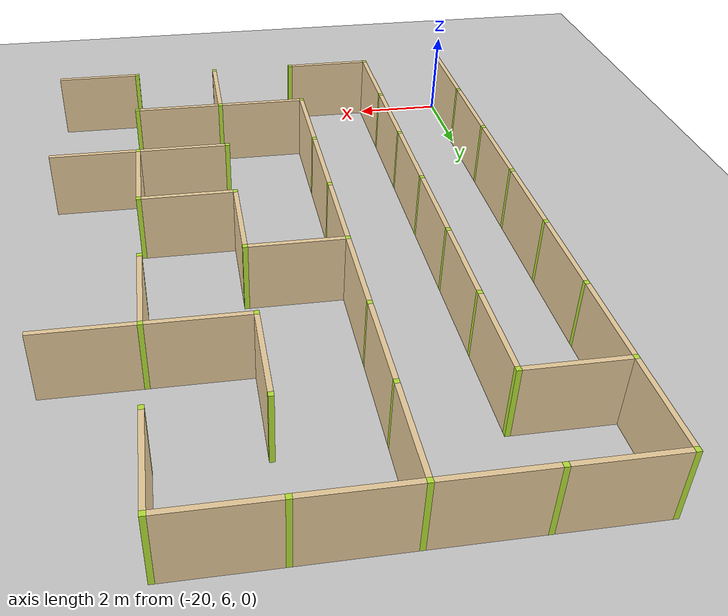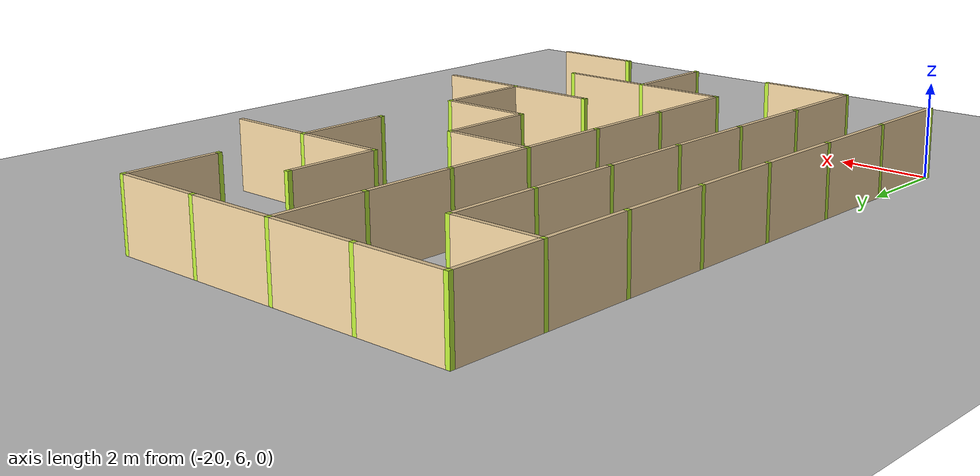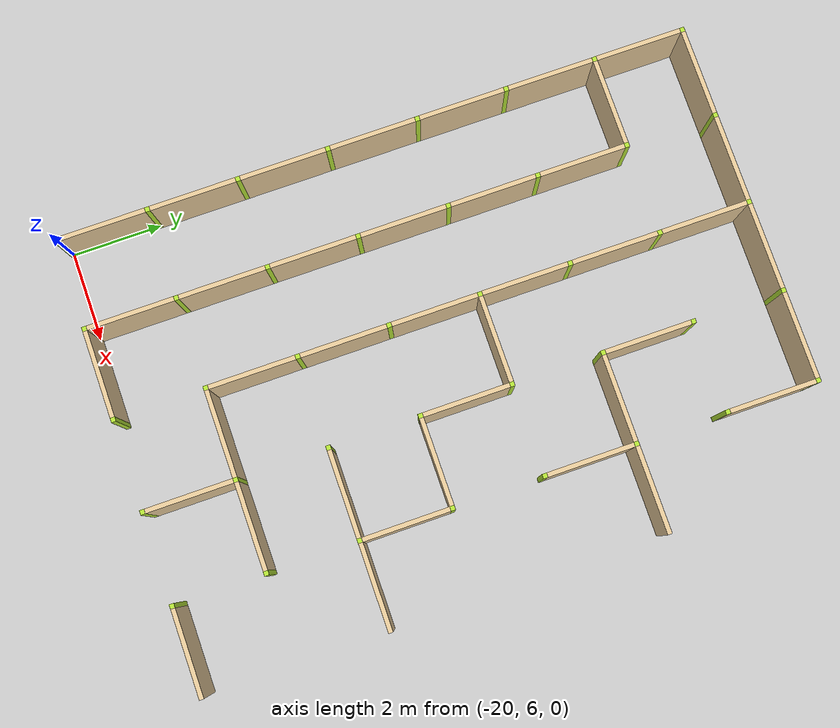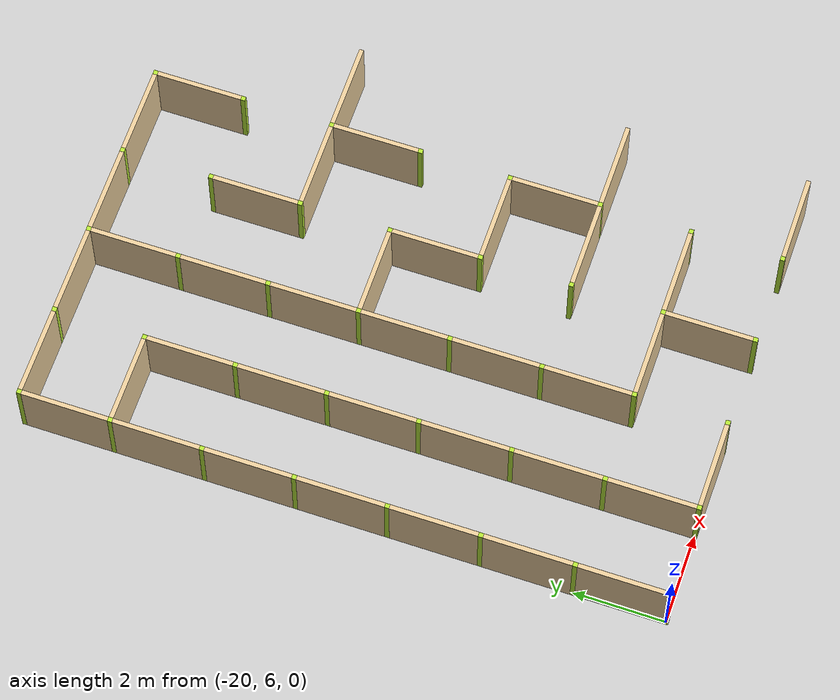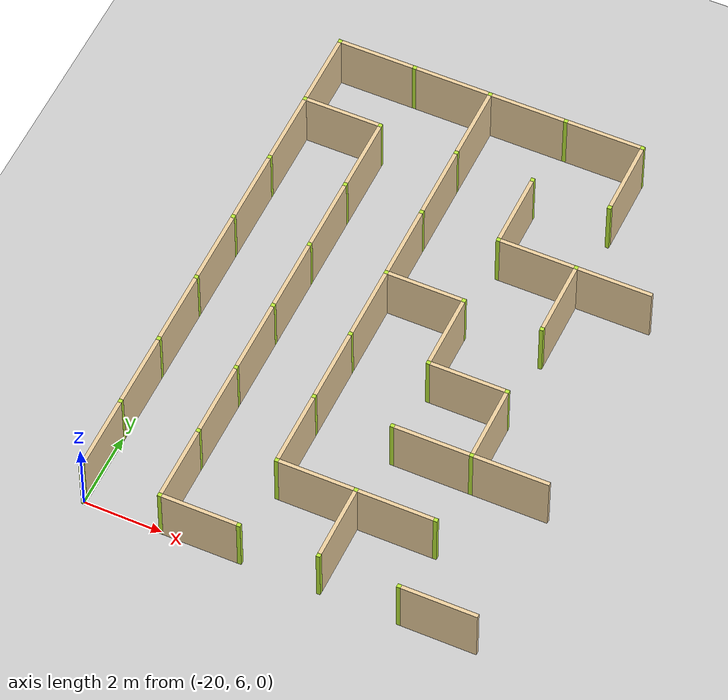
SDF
<sdf version="1.4">
 <world name="maze_world">
  <model name="ground">
   <static>true</static>
   <link name="ground_link">
    <collision name="collision1"><geometry><plane><normal>0 0 1</normal></plane></geometry></collision>
    <visual name="visual1"><geometry><plane><normal>0 0 1</normal><size>100 100</size></plane></geometry></visual>
   </link>
  </model>
  <model name="Untitled">
   <link name="Wall_0_0_h">
    <collision name="Wall_0_Collision">
     <geometry><box><size>1.9 0.1 1.5</size></box></geometry>
     <pose>0 0 0.75 0 -0 0</pose>
    </collision>
    <visual name="Wall_0_Visual">
     <pose>0 0 0.75 0 -0 0</pose>
     <geometry><box><size>1.9 0.1 1.5</size></box></geometry>
     <material>
      <script><uri>file://media/materials/scripts/gazebo.material</uri><name>Gazebo/Grey</name></script>
      <ambient>0.921569 0.807843 0.615686 1</ambient>
     </material>
     <meta><layer>0</layer></meta>
    </visual>
    <pose>-19.0 20 0 0 -0 0</pose>
   </link>
   <link name="Wall_0_0_v">
    <collision name="Wall_0_Collision">
     <geometry><box><size>1.9 0.1 1.5</size></box></geometry>
     <pose>0 0 0.75 0 -0 0</pose>
    </collision>
    <visual name="Wall_0_Visual">
     <pose>0 0 0.75 0 -0 0</pose>
     <geometry><box><size>1.9 0.1 1.5</size></box></geometry>
     <material>
      <script><uri>file://media/materials/scripts/gazebo.material</uri><name>Gazebo/Grey</name></script>
      <ambient>0.921569 0.807843 0.615686 1</ambient>
     </material>
     <meta><layer>0</layer></meta>
    </visual>
    <pose>-20 19.0 0 0 -0 1.5708</pose>
   </link>
   <link name="Joint_-20_20">
    <collision name="Wall_2_Collision">
     <geometry><box><size>0.1 0.1 1.5</size></box></geometry>
     <pose>0 0 0.75 0 -0 0</pose>
    </collision>
    <visual name="Wall_2_Visual">
     <pose>0 0 0.75 0 -0 0</pose>
     <geometry><box><size>0.1 0.1 1.5</size></box></geometry>
     <material>
      <script><uri>file://media/materials/scripts/gazebo.material</uri><name>Gazebo/Grey</name></script>
      <ambient>0.721569 0.907843 0.215686 1</ambient>
     </material>
     <meta><layer>0</layer></meta>
    </visual>
    <pose>-20 20 0 0 -0 0</pose>
   </link>
   <link name="Wall_1_0_h">
    <collision name="Wall_0_Collision">
     <geometry><box><size>1.9 0.1 1.5</size></box></geometry>
     <pose>0 0 0.75 0 -0 0</pose>
    </collision>
    <visual name="Wall_0_Visual">
     <pose>0 0 0.75 0 -0 0</pose>
     <geometry><box><size>1.9 0.1 1.5</size></box></geometry>
     <material>
      <script><uri>file://media/materials/scripts/gazebo.material</uri><name>Gazebo/Grey</name></script>
      <ambient>0.921569 0.807843 0.615686 1</ambient>
     </material>
     <meta><layer>0</layer></meta>
    </visual>
    <pose>-17.0 20 0 0 -0 0</pose>
   </link>
   <link name="Joint_-18_20">
    <collision name="Wall_2_Collision">
     <geometry><box><size>0.1 0.1 1.5</size></box></geometry>
     <pose>0 0 0.75 0 -0 0</pose>
    </collision>
    <visual name="Wall_2_Visual">
     <pose>0 0 0.75 0 -0 0</pose>
     <geometry><box><size>0.1 0.1 1.5</size></box></geometry>
     <material>
      <script><uri>file://media/materials/scripts/gazebo.material</uri><name>Gazebo/Grey</name></script>
      <ambient>0.721569 0.907843 0.215686 1</ambient>
     </material>
     <meta><layer>0</layer></meta>
    </visual>
    <pose>-18 20 0 0 -0 0</pose>
   </link>
   <link name="Wall_2_0_h">
    <collision name="Wall_0_Collision">
     <geometry><box><size>1.9 0.1 1.5</size></box></geometry>
     <pose>0 0 0.75 0 -0 0</pose>
    </collision>
    <visual name="Wall_0_Visual">
     <pose>0 0 0.75 0 -0 0</pose>
     <geometry><box><size>1.9 0.1 1.5</size></box></geometry>
     <material>
      <script><uri>file://media/materials/scripts/gazebo.material</uri><name>Gazebo/Grey</name></script>
      <ambient>0.921569 0.807843 0.615686 1</ambient>
     </material>
     <meta><layer>0</layer></meta>
    </visual>
    <pose>-15.0 20 0 0 -0 0</pose>
   </link>
   <link name="Wall_2_0_v">
    <collision name="Wall_0_Collision">
     <geometry><box><size>1.9 0.1 1.5</size></box></geometry>
     <pose>0 0 0.75 0 -0 0</pose>
    </collision>
    <visual name="Wall_0_Visual">
     <pose>0 0 0.75 0 -0 0</pose>
     <geometry><box><size>1.9 0.1 1.5</size></box></geometry>
     <material>
      <script><uri>file://media/materials/scripts/gazebo.material</uri><name>Gazebo/Grey</name></script>
      <ambient>0.921569 0.807843 0.615686 1</ambient>
     </material>
     <meta><layer>0</layer></meta>
    </visual>
    <pose>-16 19.0 0 0 -0 1.5708</pose>
   </link>
   <link name="Joint_-16_20">
    <collision name="Wall_2_Collision">
     <geometry><box><size>0.1 0.1 1.5</size></box></geometry>
     <pose>0 0 0.75 0 -0 0</pose>
    </collision>
    <visual name="Wall_2_Visual">
     <pose>0 0 0.75 0 -0 0</pose>
     <geometry><box><size>0.1 0.1 1.5</size></box></geometry>
     <material>
      <script><uri>file://media/materials/scripts/gazebo.material</uri><name>Gazebo/Grey</name></script>
      <ambient>0.721569 0.907843 0.215686 1</ambient>
     </material>
     <meta><layer>0</layer></meta>
    </visual>
    <pose>-16 20 0 0 -0 0</pose>
   </link>
   <link name="Wall_3_0_h">
    <collision name="Wall_0_Collision">
     <geometry><box><size>1.9 0.1 1.5</size></box></geometry>
     <pose>0 0 0.75 0 -0 0</pose>
    </collision>
    <visual name="Wall_0_Visual">
     <pose>0 0 0.75 0 -0 0</pose>
     <geometry><box><size>1.9 0.1 1.5</size></box></geometry>
     <material>
      <script><uri>file://media/materials/scripts/gazebo.material</uri><name>Gazebo/Grey</name></script>
      <ambient>0.921569 0.807843 0.615686 1</ambient>
     </material>
     <meta><layer>0</layer></meta>
    </visual>
    <pose>-13.0 20 0 0 -0 0</pose>
   </link>
   <link name="Joint_-14_20">
    <collision name="Wall_2_Collision">
     <geometry><box><size>0.1 0.1 1.5</size></box></geometry>
     <pose>0 0 0.75 0 -0 0</pose>
    </collision>
    <visual name="Wall_2_Visual">
     <pose>0 0 0.75 0 -0 0</pose>
     <geometry><box><size>0.1 0.1 1.5</size></box></geometry>
     <material>
      <script><uri>file://media/materials/scripts/gazebo.material</uri><name>Gazebo/Grey</name></script>
      <ambient>0.721569 0.907843 0.215686 1</ambient>
     </material>
     <meta><layer>0</layer></meta>
    </visual>
    <pose>-14 20 0 0 -0 0</pose>
   </link>
   <link name="Wall_4_0_v">
    <collision name="Wall_0_Collision">
     <geometry><box><size>1.9 0.1 1.5</size></box></geometry>
     <pose>0 0 0.75 0 -0 0</pose>
    </collision>
    <visual name="Wall_0_Visual">
     <pose>0 0 0.75 0 -0 0</pose>
     <geometry><box><size>1.9 0.1 1.5</size></box></geometry>
     <material>
      <script><uri>file://media/materials/scripts/gazebo.material</uri><name>Gazebo/Grey</name></script>
      <ambient>0.921569 0.807843 0.615686 1</ambient>
     </material>
     <meta><layer>0</layer></meta>
    </visual>
    <pose>-12 19.0 0 0 -0 1.5708</pose>
   </link>
   <link name="Joint_-12_20">
    <collision name="Wall_2_Collision">
     <geometry><box><size>0.1 0.1 1.5</size></box></geometry>
     <pose>0 0 0.75 0 -0 0</pose>
    </collision>
    <visual name="Wall_2_Visual">
     <pose>0 0 0.75 0 -0 0</pose>
     <geometry><box><size>0.1 0.1 1.5</size></box></geometry>
     <material>
      <script><uri>file://media/materials/scripts/gazebo.material</uri><name>Gazebo/Grey</name></script>
      <ambient>0.721569 0.907843 0.215686 1</ambient>
     </material>
     <meta><layer>0</layer></meta>
    </visual>
    <pose>-12 20 0 0 -0 0</pose>
   </link>
   <link name="Wall_0_1_h">
    <collision name="Wall_0_Collision">
     <geometry><box><size>1.9 0.1 1.5</size></box></geometry>
     <pose>0 0 0.75 0 -0 0</pose>
    </collision>
    <visual name="Wall_0_Visual">
     <pose>0 0 0.75 0 -0 0</pose>
     <geometry><box><size>1.9 0.1 1.5</size></box></geometry>
     <material>
      <script><uri>file://media/materials/scripts/gazebo.material</uri><name>Gazebo/Grey</name></script>
      <ambient>0.921569 0.807843 0.615686 1</ambient>
     </material>
     <meta><layer>0</layer></meta>
    </visual>
    <pose>-19.0 18 0 0 -0 0</pose>
   </link>
   <link name="Wall_0_1_v">
    <collision name="Wall_0_Collision">
     <geometry><box><size>1.9 0.1 1.5</size></box></geometry>
     <pose>0 0 0.75 0 -0 0</pose>
    </collision>
    <visual name="Wall_0_Visual">
     <pose>0 0 0.75 0 -0 0</pose>
     <geometry><box><size>1.9 0.1 1.5</size></box></geometry>
     <material>
      <script><uri>file://media/materials/scripts/gazebo.material</uri><name>Gazebo/Grey</name></script>
      <ambient>0.921569 0.807843 0.615686 1</ambient>
     </material>
     <meta><layer>0</layer></meta>
    </visual>
    <pose>-20 17.0 0 0 -0 1.5708</pose>
   </link>
   <link name="Joint_-20_18">
    <collision name="Wall_2_Collision">
     <geometry><box><size>0.1 0.1 1.5</size></box></geometry>
     <pose>0 0 0.75 0 -0 0</pose>
    </collision>
    <visual name="Wall_2_Visual">
     <pose>0 0 0.75 0 -0 0</pose>
     <geometry><box><size>0.1 0.1 1.5</size></box></geometry>
     <material>
      <script><uri>file://media/materials/scripts/gazebo.material</uri><name>Gazebo/Grey</name></script>
      <ambient>0.721569 0.907843 0.215686 1</ambient>
     </material>
     <meta><layer>0</layer></meta>
    </visual>
    <pose>-20 18 0 0 -0 0</pose>
   </link>
   <link name="Wall_1_1_v">
    <collision name="Wall_0_Collision">
     <geometry><box><size>1.9 0.1 1.5</size></box></geometry>
     <pose>0 0 0.75 0 -0 0</pose>
    </collision>
    <visual name="Wall_0_Visual">
     <pose>0 0 0.75 0 -0 0</pose>
     <geometry><box><size>1.9 0.1 1.5</size></box></geometry>
     <material>
      <script><uri>file://media/materials/scripts/gazebo.material</uri><name>Gazebo/Grey</name></script>
      <ambient>0.921569 0.807843 0.615686 1</ambient>
     </material>
     <meta><layer>0</layer></meta>
    </visual>
    <pose>-18 17.0 0 0 -0 1.5708</pose>
   </link>
   <link name="Joint_-18_18">
    <collision name="Wall_2_Collision">
     <geometry><box><size>0.1 0.1 1.5</size></box></geometry>
     <pose>0 0 0.75 0 -0 0</pose>
    </collision>
    <visual name="Wall_2_Visual">
     <pose>0 0 0.75 0 -0 0</pose>
     <geometry><box><size>0.1 0.1 1.5</size></box></geometry>
     <material>
      <script><uri>file://media/materials/scripts/gazebo.material</uri><name>Gazebo/Grey</name></script>
      <ambient>0.721569 0.907843 0.215686 1</ambient>
     </material>
     <meta><layer>0</layer></meta>
    </visual>
    <pose>-18 18 0 0 -0 0</pose>
   </link>
   <link name="Wall_2_1_v">
    <collision name="Wall_0_Collision">
     <geometry><box><size>1.9 0.1 1.5</size></box></geometry>
     <pose>0 0 0.75 0 -0 0</pose>
    </collision>
    <visual name="Wall_0_Visual">
     <pose>0 0 0.75 0 -0 0</pose>
     <geometry><box><size>1.9 0.1 1.5</size></box></geometry>
     <material>
      <script><uri>file://media/materials/scripts/gazebo.material</uri><name>Gazebo/Grey</name></script>
      <ambient>0.921569 0.807843 0.615686 1</ambient>
     </material>
     <meta><layer>0</layer></meta>
    </visual>
    <pose>-16 17.0 0 0 -0 1.5708</pose>
   </link>
   <link name="Joint_-16_18">
    <collision name="Wall_2_Collision">
     <geometry><box><size>0.1 0.1 1.5</size></box></geometry>
     <pose>0 0 0.75 0 -0 0</pose>
    </collision>
    <visual name="Wall_2_Visual">
     <pose>0 0 0.75 0 -0 0</pose>
     <geometry><box><size>0.1 0.1 1.5</size></box></geometry>
     <material>
      <script><uri>file://media/materials/scripts/gazebo.material</uri><name>Gazebo/Grey</name></script>
      <ambient>0.721569 0.907843 0.215686 1</ambient>
     </material>
     <meta><layer>0</layer></meta>
    </visual>
    <pose>-16 18 0 0 -0 0</pose>
   </link>
   <link name="Wall_3_1_v">
    <collision name="Wall_0_Collision">
     <geometry><box><size>1.9 0.1 1.5</size></box></geometry>
     <pose>0 0 0.75 0 -0 0</pose>
    </collision>
    <visual name="Wall_0_Visual">
     <pose>0 0 0.75 0 -0 0</pose>
     <geometry><box><size>1.9 0.1 1.5</size></box></geometry>
     <material>
      <script><uri>file://media/materials/scripts/gazebo.material</uri><name>Gazebo/Grey</name></script>
      <ambient>0.921569 0.807843 0.615686 1</ambient>
     </material>
     <meta><layer>0</layer></meta>
    </visual>
    <pose>-14 17.0 0 0 -0 1.5708</pose>
   </link>
   <link name="Joint_-14_18">
    <collision name="Wall_2_Collision">
     <geometry><box><size>0.1 0.1 1.5</size></box></geometry>
     <pose>0 0 0.75 0 -0 0</pose>
    </collision>
    <visual name="Wall_2_Visual">
     <pose>0 0 0.75 0 -0 0</pose>
     <geometry><box><size>0.1 0.1 1.5</size></box></geometry>
     <material>
      <script><uri>file://media/materials/scripts/gazebo.material</uri><name>Gazebo/Grey</name></script>
      <ambient>0.721569 0.907843 0.215686 1</ambient>
     </material>
     <meta><layer>0</layer></meta>
    </visual>
    <pose>-14 18 0 0 -0 0</pose>
   </link>
   <link name="Joint_-12_18">
    <collision name="Wall_2_Collision">
     <geometry><box><size>0.1 0.1 1.5</size></box></geometry>
     <pose>0 0 0.75 0 -0 0</pose>
    </collision>
    <visual name="Wall_2_Visual">
     <pose>0 0 0.75 0 -0 0</pose>
     <geometry><box><size>0.1 0.1 1.5</size></box></geometry>
     <material>
      <script><uri>file://media/materials/scripts/gazebo.material</uri><name>Gazebo/Grey</name></script>
      <ambient>0.721569 0.907843 0.215686 1</ambient>
     </material>
     <meta><layer>0</layer></meta>
    </visual>
    <pose>-12 18 0 0 -0 0</pose>
   </link>
   <link name="Wall_0_2_v">
    <collision name="Wall_0_Collision">
     <geometry><box><size>1.9 0.1 1.5</size></box></geometry>
     <pose>0 0 0.75 0 -0 0</pose>
    </collision>
    <visual name="Wall_0_Visual">
     <pose>0 0 0.75 0 -0 0</pose>
     <geometry><box><size>1.9 0.1 1.5</size></box></geometry>
     <material>
      <script><uri>file://media/materials/scripts/gazebo.material</uri><name>Gazebo/Grey</name></script>
      <ambient>0.921569 0.807843 0.615686 1</ambient>
     </material>
     <meta><layer>0</layer></meta>
    </visual>
    <pose>-20 15.0 0 0 -0 1.5708</pose>
   </link>
   <link name="Joint_-20_16">
    <collision name="Wall_2_Collision">
     <geometry><box><size>0.1 0.1 1.5</size></box></geometry>
     <pose>0 0 0.75 0 -0 0</pose>
    </collision>
    <visual name="Wall_2_Visual">
     <pose>0 0 0.75 0 -0 0</pose>
     <geometry><box><size>0.1 0.1 1.5</size></box></geometry>
     <material>
      <script><uri>file://media/materials/scripts/gazebo.material</uri><name>Gazebo/Grey</name></script>
      <ambient>0.721569 0.907843 0.215686 1</ambient>
     </material>
     <meta><layer>0</layer></meta>
    </visual>
    <pose>-20 16 0 0 -0 0</pose>
   </link>
   <link name="Wall_1_2_v">
    <collision name="Wall_0_Collision">
     <geometry><box><size>1.9 0.1 1.5</size></box></geometry>
     <pose>0 0 0.75 0 -0 0</pose>
    </collision>
    <visual name="Wall_0_Visual">
     <pose>0 0 0.75 0 -0 0</pose>
     <geometry><box><size>1.9 0.1 1.5</size></box></geometry>
     <material>
      <script><uri>file://media/materials/scripts/gazebo.material</uri><name>Gazebo/Grey</name></script>
      <ambient>0.921569 0.807843 0.615686 1</ambient>
     </material>
     <meta><layer>0</layer></meta>
    </visual>
    <pose>-18 15.0 0 0 -0 1.5708</pose>
   </link>
   <link name="Joint_-18_16">
    <collision name="Wall_2_Collision">
     <geometry><box><size>0.1 0.1 1.5</size></box></geometry>
     <pose>0 0 0.75 0 -0 0</pose>
    </collision>
    <visual name="Wall_2_Visual">
     <pose>0 0 0.75 0 -0 0</pose>
     <geometry><box><size>0.1 0.1 1.5</size></box></geometry>
     <material>
      <script><uri>file://media/materials/scripts/gazebo.material</uri><name>Gazebo/Grey</name></script>
      <ambient>0.721569 0.907843 0.215686 1</ambient>
     </material>
     <meta><layer>0</layer></meta>
    </visual>
    <pose>-18 16 0 0 -0 0</pose>
   </link>
   <link name="Wall_2_2_v">
    <collision name="Wall_0_Collision">
     <geometry><box><size>1.9 0.1 1.5</size></box></geometry>
     <pose>0 0 0.75 0 -0 0</pose>
    </collision>
    <visual name="Wall_0_Visual">
     <pose>0 0 0.75 0 -0 0</pose>
     <geometry><box><size>1.9 0.1 1.5</size></box></geometry>
     <material>
      <script><uri>file://media/materials/scripts/gazebo.material</uri><name>Gazebo/Grey</name></script>
      <ambient>0.921569 0.807843 0.615686 1</ambient>
     </material>
     <meta><layer>0</layer></meta>
    </visual>
    <pose>-16 15.0 0 0 -0 1.5708</pose>
   </link>
   <link name="Joint_-16_16">
    <collision name="Wall_2_Collision">
     <geometry><box><size>0.1 0.1 1.5</size></box></geometry>
     <pose>0 0 0.75 0 -0 0</pose>
    </collision>
    <visual name="Wall_2_Visual">
     <pose>0 0 0.75 0 -0 0</pose>
     <geometry><box><size>0.1 0.1 1.5</size></box></geometry>
     <material>
      <script><uri>file://media/materials/scripts/gazebo.material</uri><name>Gazebo/Grey</name></script>
      <ambient>0.721569 0.907843 0.215686 1</ambient>
     </material>
     <meta><layer>0</layer></meta>
    </visual>
    <pose>-16 16 0 0 -0 0</pose>
   </link>
   <link name="Wall_3_2_h">
    <collision name="Wall_0_Collision">
     <geometry><box><size>1.9 0.1 1.5</size></box></geometry>
     <pose>0 0 0.75 0 -0 0</pose>
    </collision>
    <visual name="Wall_0_Visual">
     <pose>0 0 0.75 0 -0 0</pose>
     <geometry><box><size>1.9 0.1 1.5</size></box></geometry>
     <material>
      <script><uri>file://media/materials/scripts/gazebo.material</uri><name>Gazebo/Grey</name></script>
      <ambient>0.921569 0.807843 0.615686 1</ambient>
     </material>
     <meta><layer>0</layer></meta>
    </visual>
    <pose>-13.0 16 0 0 -0 0</pose>
   </link>
   <link name="Joint_-14_16">
    <collision name="Wall_2_Collision">
     <geometry><box><size>0.1 0.1 1.5</size></box></geometry>
     <pose>0 0 0.75 0 -0 0</pose>
    </collision>
    <visual name="Wall_2_Visual">
     <pose>0 0 0.75 0 -0 0</pose>
     <geometry><box><size>0.1 0.1 1.5</size></box></geometry>
     <material>
      <script><uri>file://media/materials/scripts/gazebo.material</uri><name>Gazebo/Grey</name></script>
      <ambient>0.721569 0.907843 0.215686 1</ambient>
     </material>
     <meta><layer>0</layer></meta>
    </visual>
    <pose>-14 16 0 0 -0 0</pose>
   </link>
   <link name="Wall_4_2_h">
    <collision name="Wall_0_Collision">
     <geometry><box><size>1.9 0.1 1.5</size></box></geometry>
     <pose>0 0 0.75 0 -0 0</pose>
    </collision>
    <visual name="Wall_0_Visual">
     <pose>0 0 0.75 0 -0 0</pose>
     <geometry><box><size>1.9 0.1 1.5</size></box></geometry>
     <material>
      <script><uri>file://media/materials/scripts/gazebo.material</uri><name>Gazebo/Grey</name></script>
      <ambient>0.921569 0.807843 0.615686 1</ambient>
     </material>
     <meta><layer>0</layer></meta>
    </visual>
    <pose>-11.0 16 0 0 -0 0</pose>
   </link>
   <link name="Wall_4_2_v">
    <collision name="Wall_0_Collision">
     <geometry><box><size>1.9 0.1 1.5</size></box></geometry>
     <pose>0 0 0.75 0 -0 0</pose>
    </collision>
    <visual name="Wall_0_Visual">
     <pose>0 0 0.75 0 -0 0</pose>
     <geometry><box><size>1.9 0.1 1.5</size></box></geometry>
     <material>
      <script><uri>file://media/materials/scripts/gazebo.material</uri><name>Gazebo/Grey</name></script>
      <ambient>0.921569 0.807843 0.615686 1</ambient>
     </material>
     <meta><layer>0</layer></meta>
    </visual>
    <pose>-12 15.0 0 0 -0 1.5708</pose>
   </link>
   <link name="Joint_-12_16">
    <collision name="Wall_2_Collision">
     <geometry><box><size>0.1 0.1 1.5</size></box></geometry>
     <pose>0 0 0.75 0 -0 0</pose>
    </collision>
    <visual name="Wall_2_Visual">
     <pose>0 0 0.75 0 -0 0</pose>
     <geometry><box><size>0.1 0.1 1.5</size></box></geometry>
     <material>
      <script><uri>file://media/materials/scripts/gazebo.material</uri><name>Gazebo/Grey</name></script>
      <ambient>0.721569 0.907843 0.215686 1</ambient>
     </material>
     <meta><layer>0</layer></meta>
    </visual>
    <pose>-12 16 0 0 -0 0</pose>
   </link>
   <link name="Wall_0_3_v">
    <collision name="Wall_0_Collision">
     <geometry><box><size>1.9 0.1 1.5</size></box></geometry>
     <pose>0 0 0.75 0 -0 0</pose>
    </collision>
    <visual name="Wall_0_Visual">
     <pose>0 0 0.75 0 -0 0</pose>
     <geometry><box><size>1.9 0.1 1.5</size></box></geometry>
     <material>
      <script><uri>file://media/materials/scripts/gazebo.material</uri><name>Gazebo/Grey</name></script>
      <ambient>0.921569 0.807843 0.615686 1</ambient>
     </material>
     <meta><layer>0</layer></meta>
    </visual>
    <pose>-20 13.0 0 0 -0 1.5708</pose>
   </link>
   <link name="Joint_-20_14">
    <collision name="Wall_2_Collision">
     <geometry><box><size>0.1 0.1 1.5</size></box></geometry>
     <pose>0 0 0.75 0 -0 0</pose>
    </collision>
    <visual name="Wall_2_Visual">
     <pose>0 0 0.75 0 -0 0</pose>
     <geometry><box><size>0.1 0.1 1.5</size></box></geometry>
     <material>
      <script><uri>file://media/materials/scripts/gazebo.material</uri><name>Gazebo/Grey</name></script>
      <ambient>0.721569 0.907843 0.215686 1</ambient>
     </material>
     <meta><layer>0</layer></meta>
    </visual>
    <pose>-20 14 0 0 -0 0</pose>
   </link>
   <link name="Wall_1_3_v">
    <collision name="Wall_0_Collision">
     <geometry><box><size>1.9 0.1 1.5</size></box></geometry>
     <pose>0 0 0.75 0 -0 0</pose>
    </collision>
    <visual name="Wall_0_Visual">
     <pose>0 0 0.75 0 -0 0</pose>
     <geometry><box><size>1.9 0.1 1.5</size></box></geometry>
     <material>
      <script><uri>file://media/materials/scripts/gazebo.material</uri><name>Gazebo/Grey</name></script>
      <ambient>0.921569 0.807843 0.615686 1</ambient>
     </material>
     <meta><layer>0</layer></meta>
    </visual>
    <pose>-18 13.0 0 0 -0 1.5708</pose>
   </link>
   <link name="Joint_-18_14">
    <collision name="Wall_2_Collision">
     <geometry><box><size>0.1 0.1 1.5</size></box></geometry>
     <pose>0 0 0.75 0 -0 0</pose>
    </collision>
    <visual name="Wall_2_Visual">
     <pose>0 0 0.75 0 -0 0</pose>
     <geometry><box><size>0.1 0.1 1.5</size></box></geometry>
     <material>
      <script><uri>file://media/materials/scripts/gazebo.material</uri><name>Gazebo/Grey</name></script>
      <ambient>0.721569 0.907843 0.215686 1</ambient>
     </material>
     <meta><layer>0</layer></meta>
    </visual>
    <pose>-18 14 0 0 -0 0</pose>
   </link>
   <link name="Wall_2_3_h">
    <collision name="Wall_0_Collision">
     <geometry><box><size>1.9 0.1 1.5</size></box></geometry>
     <pose>0 0 0.75 0 -0 0</pose>
    </collision>
    <visual name="Wall_0_Visual">
     <pose>0 0 0.75 0 -0 0</pose>
     <geometry><box><size>1.9 0.1 1.5</size></box></geometry>
     <material>
      <script><uri>file://media/materials/scripts/gazebo.material</uri><name>Gazebo/Grey</name></script>
      <ambient>0.921569 0.807843 0.615686 1</ambient>
     </material>
     <meta><layer>0</layer></meta>
    </visual>
    <pose>-15.0 14 0 0 -0 0</pose>
   </link>
   <link name="Wall_2_3_v">
    <collision name="Wall_0_Collision">
     <geometry><box><size>1.9 0.1 1.5</size></box></geometry>
     <pose>0 0 0.75 0 -0 0</pose>
    </collision>
    <visual name="Wall_0_Visual">
     <pose>0 0 0.75 0 -0 0</pose>
     <geometry><box><size>1.9 0.1 1.5</size></box></geometry>
     <material>
      <script><uri>file://media/materials/scripts/gazebo.material</uri><name>Gazebo/Grey</name></script>
      <ambient>0.921569 0.807843 0.615686 1</ambient>
     </material>
     <meta><layer>0</layer></meta>
    </visual>
    <pose>-16 13.0 0 0 -0 1.5708</pose>
   </link>
   <link name="Joint_-16_14">
    <collision name="Wall_2_Collision">
     <geometry><box><size>0.1 0.1 1.5</size></box></geometry>
     <pose>0 0 0.75 0 -0 0</pose>
    </collision>
    <visual name="Wall_2_Visual">
     <pose>0 0 0.75 0 -0 0</pose>
     <geometry><box><size>0.1 0.1 1.5</size></box></geometry>
     <material>
      <script><uri>file://media/materials/scripts/gazebo.material</uri><name>Gazebo/Grey</name></script>
      <ambient>0.721569 0.907843 0.215686 1</ambient>
     </material>
     <meta><layer>0</layer></meta>
    </visual>
    <pose>-16 14 0 0 -0 0</pose>
   </link>
   <link name="Wall_3_3_v">
    <collision name="Wall_0_Collision">
     <geometry><box><size>1.9 0.1 1.5</size></box></geometry>
     <pose>0 0 0.75 0 -0 0</pose>
    </collision>
    <visual name="Wall_0_Visual">
     <pose>0 0 0.75 0 -0 0</pose>
     <geometry><box><size>1.9 0.1 1.5</size></box></geometry>
     <material>
      <script><uri>file://media/materials/scripts/gazebo.material</uri><name>Gazebo/Grey</name></script>
      <ambient>0.921569 0.807843 0.615686 1</ambient>
     </material>
     <meta><layer>0</layer></meta>
    </visual>
    <pose>-14 13.0 0 0 -0 1.5708</pose>
   </link>
   <link name="Joint_-14_14">
    <collision name="Wall_2_Collision">
     <geometry><box><size>0.1 0.1 1.5</size></box></geometry>
     <pose>0 0 0.75 0 -0 0</pose>
    </collision>
    <visual name="Wall_2_Visual">
     <pose>0 0 0.75 0 -0 0</pose>
     <geometry><box><size>0.1 0.1 1.5</size></box></geometry>
     <material>
      <script><uri>file://media/materials/scripts/gazebo.material</uri><name>Gazebo/Grey</name></script>
      <ambient>0.721569 0.907843 0.215686 1</ambient>
     </material>
     <meta><layer>0</layer></meta>
    </visual>
    <pose>-14 14 0 0 -0 0</pose>
   </link>
   <link name="Joint_-12_14">
    <collision name="Wall_2_Collision">
     <geometry><box><size>0.1 0.1 1.5</size></box></geometry>
     <pose>0 0 0.75 0 -0 0</pose>
    </collision>
    <visual name="Wall_2_Visual">
     <pose>0 0 0.75 0 -0 0</pose>
     <geometry><box><size>0.1 0.1 1.5</size></box></geometry>
     <material>
      <script><uri>file://media/materials/scripts/gazebo.material</uri><name>Gazebo/Grey</name></script>
      <ambient>0.721569 0.907843 0.215686 1</ambient>
     </material>
     <meta><layer>0</layer></meta>
    </visual>
    <pose>-12 14 0 0 -0 0</pose>
   </link>
   <link name="Wall_0_4_v">
    <collision name="Wall_0_Collision">
     <geometry><box><size>1.9 0.1 1.5</size></box></geometry>
     <pose>0 0 0.75 0 -0 0</pose>
    </collision>
    <visual name="Wall_0_Visual">
     <pose>0 0 0.75 0 -0 0</pose>
     <geometry><box><size>1.9 0.1 1.5</size></box></geometry>
     <material>
      <script><uri>file://media/materials/scripts/gazebo.material</uri><name>Gazebo/Grey</name></script>
      <ambient>0.921569 0.807843 0.615686 1</ambient>
     </material>
     <meta><layer>0</layer></meta>
    </visual>
    <pose>-20 11.0 0 0 -0 1.5708</pose>
   </link>
   <link name="Joint_-20_12">
    <collision name="Wall_2_Collision">
     <geometry><box><size>0.1 0.1 1.5</size></box></geometry>
     <pose>0 0 0.75 0 -0 0</pose>
    </collision>
    <visual name="Wall_2_Visual">
     <pose>0 0 0.75 0 -0 0</pose>
     <geometry><box><size>0.1 0.1 1.5</size></box></geometry>
     <material>
      <script><uri>file://media/materials/scripts/gazebo.material</uri><name>Gazebo/Grey</name></script>
      <ambient>0.721569 0.907843 0.215686 1</ambient>
     </material>
     <meta><layer>0</layer></meta>
    </visual>
    <pose>-20 12 0 0 -0 0</pose>
   </link>
   <link name="Wall_1_4_v">
    <collision name="Wall_0_Collision">
     <geometry><box><size>1.9 0.1 1.5</size></box></geometry>
     <pose>0 0 0.75 0 -0 0</pose>
    </collision>
    <visual name="Wall_0_Visual">
     <pose>0 0 0.75 0 -0 0</pose>
     <geometry><box><size>1.9 0.1 1.5</size></box></geometry>
     <material>
      <script><uri>file://media/materials/scripts/gazebo.material</uri><name>Gazebo/Grey</name></script>
      <ambient>0.921569 0.807843 0.615686 1</ambient>
     </material>
     <meta><layer>0</layer></meta>
    </visual>
    <pose>-18 11.0 0 0 -0 1.5708</pose>
   </link>
   <link name="Joint_-18_12">
    <collision name="Wall_2_Collision">
     <geometry><box><size>0.1 0.1 1.5</size></box></geometry>
     <pose>0 0 0.75 0 -0 0</pose>
    </collision>
    <visual name="Wall_2_Visual">
     <pose>0 0 0.75 0 -0 0</pose>
     <geometry><box><size>0.1 0.1 1.5</size></box></geometry>
     <material>
      <script><uri>file://media/materials/scripts/gazebo.material</uri><name>Gazebo/Grey</name></script>
      <ambient>0.721569 0.907843 0.215686 1</ambient>
     </material>
     <meta><layer>0</layer></meta>
    </visual>
    <pose>-18 12 0 0 -0 0</pose>
   </link>
   <link name="Wall_2_4_v">
    <collision name="Wall_0_Collision">
     <geometry><box><size>1.9 0.1 1.5</size></box></geometry>
     <pose>0 0 0.75 0 -0 0</pose>
    </collision>
    <visual name="Wall_0_Visual">
     <pose>0 0 0.75 0 -0 0</pose>
     <geometry><box><size>1.9 0.1 1.5</size></box></geometry>
     <material>
      <script><uri>file://media/materials/scripts/gazebo.material</uri><name>Gazebo/Grey</name></script>
      <ambient>0.921569 0.807843 0.615686 1</ambient>
     </material>
     <meta><layer>0</layer></meta>
    </visual>
    <pose>-16 11.0 0 0 -0 1.5708</pose>
   </link>
   <link name="Joint_-16_12">
    <collision name="Wall_2_Collision">
     <geometry><box><size>0.1 0.1 1.5</size></box></geometry>
     <pose>0 0 0.75 0 -0 0</pose>
    </collision>
    <visual name="Wall_2_Visual">
     <pose>0 0 0.75 0 -0 0</pose>
     <geometry><box><size>0.1 0.1 1.5</size></box></geometry>
     <material>
      <script><uri>file://media/materials/scripts/gazebo.material</uri><name>Gazebo/Grey</name></script>
      <ambient>0.721569 0.907843 0.215686 1</ambient>
     </material>
     <meta><layer>0</layer></meta>
    </visual>
    <pose>-16 12 0 0 -0 0</pose>
   </link>
   <link name="Wall_3_4_h">
    <collision name="Wall_0_Collision">
     <geometry><box><size>1.9 0.1 1.5</size></box></geometry>
     <pose>0 0 0.75 0 -0 0</pose>
    </collision>
    <visual name="Wall_0_Visual">
     <pose>0 0 0.75 0 -0 0</pose>
     <geometry><box><size>1.9 0.1 1.5</size></box></geometry>
     <material>
      <script><uri>file://media/materials/scripts/gazebo.material</uri><name>Gazebo/Grey</name></script>
      <ambient>0.921569 0.807843 0.615686 1</ambient>
     </material>
     <meta><layer>0</layer></meta>
    </visual>
    <pose>-13.0 12 0 0 -0 0</pose>
   </link>
   <link name="Joint_-14_12">
    <collision name="Wall_2_Collision">
     <geometry><box><size>0.1 0.1 1.5</size></box></geometry>
     <pose>0 0 0.75 0 -0 0</pose>
    </collision>
    <visual name="Wall_2_Visual">
     <pose>0 0 0.75 0 -0 0</pose>
     <geometry><box><size>0.1 0.1 1.5</size></box></geometry>
     <material>
      <script><uri>file://media/materials/scripts/gazebo.material</uri><name>Gazebo/Grey</name></script>
      <ambient>0.721569 0.907843 0.215686 1</ambient>
     </material>
     <meta><layer>0</layer></meta>
    </visual>
    <pose>-14 12 0 0 -0 0</pose>
   </link>
   <link name="Wall_4_4_v">
    <collision name="Wall_0_Collision">
     <geometry><box><size>1.9 0.1 1.5</size></box></geometry>
     <pose>0 0 0.75 0 -0 0</pose>
    </collision>
    <visual name="Wall_0_Visual">
     <pose>0 0 0.75 0 -0 0</pose>
     <geometry><box><size>1.9 0.1 1.5</size></box></geometry>
     <material>
      <script><uri>file://media/materials/scripts/gazebo.material</uri><name>Gazebo/Grey</name></script>
      <ambient>0.921569 0.807843 0.615686 1</ambient>
     </material>
     <meta><layer>0</layer></meta>
    </visual>
    <pose>-12 11.0 0 0 -0 1.5708</pose>
   </link>
   <link name="Joint_-12_12">
    <collision name="Wall_2_Collision">
     <geometry><box><size>0.1 0.1 1.5</size></box></geometry>
     <pose>0 0 0.75 0 -0 0</pose>
    </collision>
    <visual name="Wall_2_Visual">
     <pose>0 0 0.75 0 -0 0</pose>
     <geometry><box><size>0.1 0.1 1.5</size></box></geometry>
     <material>
      <script><uri>file://media/materials/scripts/gazebo.material</uri><name>Gazebo/Grey</name></script>
      <ambient>0.721569 0.907843 0.215686 1</ambient>
     </material>
     <meta><layer>0</layer></meta>
    </visual>
    <pose>-12 12 0 0 -0 0</pose>
   </link>
   <link name="Wall_0_5_v">
    <collision name="Wall_0_Collision">
     <geometry><box><size>1.9 0.1 1.5</size></box></geometry>
     <pose>0 0 0.75 0 -0 0</pose>
    </collision>
    <visual name="Wall_0_Visual">
     <pose>0 0 0.75 0 -0 0</pose>
     <geometry><box><size>1.9 0.1 1.5</size></box></geometry>
     <material>
      <script><uri>file://media/materials/scripts/gazebo.material</uri><name>Gazebo/Grey</name></script>
      <ambient>0.921569 0.807843 0.615686 1</ambient>
     </material>
     <meta><layer>0</layer></meta>
    </visual>
    <pose>-20 9.0 0 0 -0 1.5708</pose>
   </link>
   <link name="Joint_-20_10">
    <collision name="Wall_2_Collision">
     <geometry><box><size>0.1 0.1 1.5</size></box></geometry>
     <pose>0 0 0.75 0 -0 0</pose>
    </collision>
    <visual name="Wall_2_Visual">
     <pose>0 0 0.75 0 -0 0</pose>
     <geometry><box><size>0.1 0.1 1.5</size></box></geometry>
     <material>
      <script><uri>file://media/materials/scripts/gazebo.material</uri><name>Gazebo/Grey</name></script>
      <ambient>0.721569 0.907843 0.215686 1</ambient>
     </material>
     <meta><layer>0</layer></meta>
    </visual>
    <pose>-20 10 0 0 -0 0</pose>
   </link>
   <link name="Wall_1_5_v">
    <collision name="Wall_0_Collision">
     <geometry><box><size>1.9 0.1 1.5</size></box></geometry>
     <pose>0 0 0.75 0 -0 0</pose>
    </collision>
    <visual name="Wall_0_Visual">
     <pose>0 0 0.75 0 -0 0</pose>
     <geometry><box><size>1.9 0.1 1.5</size></box></geometry>
     <material>
      <script><uri>file://media/materials/scripts/gazebo.material</uri><name>Gazebo/Grey</name></script>
      <ambient>0.921569 0.807843 0.615686 1</ambient>
     </material>
     <meta><layer>0</layer></meta>
    </visual>
    <pose>-18 9.0 0 0 -0 1.5708</pose>
   </link>
   <link name="Joint_-18_10">
    <collision name="Wall_2_Collision">
     <geometry><box><size>0.1 0.1 1.5</size></box></geometry>
     <pose>0 0 0.75 0 -0 0</pose>
    </collision>
    <visual name="Wall_2_Visual">
     <pose>0 0 0.75 0 -0 0</pose>
     <geometry><box><size>0.1 0.1 1.5</size></box></geometry>
     <material>
      <script><uri>file://media/materials/scripts/gazebo.material</uri><name>Gazebo/Grey</name></script>
      <ambient>0.721569 0.907843 0.215686 1</ambient>
     </material>
     <meta><layer>0</layer></meta>
    </visual>
    <pose>-18 10 0 0 -0 0</pose>
   </link>
   <link name="Wall_2_5_v">
    <collision name="Wall_0_Collision">
     <geometry><box><size>1.9 0.1 1.5</size></box></geometry>
     <pose>0 0 0.75 0 -0 0</pose>
    </collision>
    <visual name="Wall_0_Visual">
     <pose>0 0 0.75 0 -0 0</pose>
     <geometry><box><size>1.9 0.1 1.5</size></box></geometry>
     <material>
      <script><uri>file://media/materials/scripts/gazebo.material</uri><name>Gazebo/Grey</name></script>
      <ambient>0.921569 0.807843 0.615686 1</ambient>
     </material>
     <meta><layer>0</layer></meta>
    </visual>
    <pose>-16 9.0 0 0 -0 1.5708</pose>
   </link>
   <link name="Joint_-16_10">
    <collision name="Wall_2_Collision">
     <geometry><box><size>0.1 0.1 1.5</size></box></geometry>
     <pose>0 0 0.75 0 -0 0</pose>
    </collision>
    <visual name="Wall_2_Visual">
     <pose>0 0 0.75 0 -0 0</pose>
     <geometry><box><size>0.1 0.1 1.5</size></box></geometry>
     <material>
      <script><uri>file://media/materials/scripts/gazebo.material</uri><name>Gazebo/Grey</name></script>
      <ambient>0.721569 0.907843 0.215686 1</ambient>
     </material>
     <meta><layer>0</layer></meta>
    </visual>
    <pose>-16 10 0 0 -0 0</pose>
   </link>
   <link name="Wall_3_5_h">
    <collision name="Wall_0_Collision">
     <geometry><box><size>1.9 0.1 1.5</size></box></geometry>
     <pose>0 0 0.75 0 -0 0</pose>
    </collision>
    <visual name="Wall_0_Visual">
     <pose>0 0 0.75 0 -0 0</pose>
     <geometry><box><size>1.9 0.1 1.5</size></box></geometry>
     <material>
      <script><uri>file://media/materials/scripts/gazebo.material</uri><name>Gazebo/Grey</name></script>
      <ambient>0.921569 0.807843 0.615686 1</ambient>
     </material>
     <meta><layer>0</layer></meta>
    </visual>
    <pose>-13.0 10 0 0 -0 0</pose>
   </link>
   <link name="Joint_-14_10">
    <collision name="Wall_2_Collision">
     <geometry><box><size>0.1 0.1 1.5</size></box></geometry>
     <pose>0 0 0.75 0 -0 0</pose>
    </collision>
    <visual name="Wall_2_Visual">
     <pose>0 0 0.75 0 -0 0</pose>
     <geometry><box><size>0.1 0.1 1.5</size></box></geometry>
     <material>
      <script><uri>file://media/materials/scripts/gazebo.material</uri><name>Gazebo/Grey</name></script>
      <ambient>0.721569 0.907843 0.215686 1</ambient>
     </material>
     <meta><layer>0</layer></meta>
    </visual>
    <pose>-14 10 0 0 -0 0</pose>
   </link>
   <link name="Wall_4_5_h">
    <collision name="Wall_0_Collision">
     <geometry><box><size>1.9 0.1 1.5</size></box></geometry>
     <pose>0 0 0.75 0 -0 0</pose>
    </collision>
    <visual name="Wall_0_Visual">
     <pose>0 0 0.75 0 -0 0</pose>
     <geometry><box><size>1.9 0.1 1.5</size></box></geometry>
     <material>
      <script><uri>file://media/materials/scripts/gazebo.material</uri><name>Gazebo/Grey</name></script>
      <ambient>0.921569 0.807843 0.615686 1</ambient>
     </material>
     <meta><layer>0</layer></meta>
    </visual>
    <pose>-11.0 10 0 0 -0 0</pose>
   </link>
   <link name="Joint_-12_10">
    <collision name="Wall_2_Collision">
     <geometry><box><size>0.1 0.1 1.5</size></box></geometry>
     <pose>0 0 0.75 0 -0 0</pose>
    </collision>
    <visual name="Wall_2_Visual">
     <pose>0 0 0.75 0 -0 0</pose>
     <geometry><box><size>0.1 0.1 1.5</size></box></geometry>
     <material>
      <script><uri>file://media/materials/scripts/gazebo.material</uri><name>Gazebo/Grey</name></script>
      <ambient>0.721569 0.907843 0.215686 1</ambient>
     </material>
     <meta><layer>0</layer></meta>
    </visual>
    <pose>-12 10 0 0 -0 0</pose>
   </link>
   <link name="Wall_0_6_v">
    <collision name="Wall_0_Collision">
     <geometry><box><size>1.9 0.1 1.5</size></box></geometry>
     <pose>0 0 0.75 0 -0 0</pose>
    </collision>
    <visual name="Wall_0_Visual">
     <pose>0 0 0.75 0 -0 0</pose>
     <geometry><box><size>1.9 0.1 1.5</size></box></geometry>
     <material>
      <script><uri>file://media/materials/scripts/gazebo.material</uri><name>Gazebo/Grey</name></script>
      <ambient>0.921569 0.807843 0.615686 1</ambient>
     </material>
     <meta><layer>0</layer></meta>
    </visual>
    <pose>-20 7.0 0 0 -0 1.5708</pose>
   </link>
   <link name="Joint_-20_8">
    <collision name="Wall_2_Collision">
     <geometry><box><size>0.1 0.1 1.5</size></box></geometry>
     <pose>0 0 0.75 0 -0 0</pose>
    </collision>
    <visual name="Wall_2_Visual">
     <pose>0 0 0.75 0 -0 0</pose>
     <geometry><box><size>0.1 0.1 1.5</size></box></geometry>
     <material>
      <script><uri>file://media/materials/scripts/gazebo.material</uri><name>Gazebo/Grey</name></script>
      <ambient>0.721569 0.907843 0.215686 1</ambient>
     </material>
     <meta><layer>0</layer></meta>
    </visual>
    <pose>-20 8 0 0 -0 0</pose>
   </link>
   <link name="Wall_1_6_v">
    <collision name="Wall_0_Collision">
     <geometry><box><size>1.9 0.1 1.5</size></box></geometry>
     <pose>0 0 0.75 0 -0 0</pose>
    </collision>
    <visual name="Wall_0_Visual">
     <pose>0 0 0.75 0 -0 0</pose>
     <geometry><box><size>1.9 0.1 1.5</size></box></geometry>
     <material>
      <script><uri>file://media/materials/scripts/gazebo.material</uri><name>Gazebo/Grey</name></script>
      <ambient>0.921569 0.807843 0.615686 1</ambient>
     </material>
     <meta><layer>0</layer></meta>
    </visual>
    <pose>-18 7.0 0 0 -0 1.5708</pose>
   </link>
   <link name="Joint_-18_8">
    <collision name="Wall_2_Collision">
     <geometry><box><size>0.1 0.1 1.5</size></box></geometry>
     <pose>0 0 0.75 0 -0 0</pose>
    </collision>
    <visual name="Wall_2_Visual">
     <pose>0 0 0.75 0 -0 0</pose>
     <geometry><box><size>0.1 0.1 1.5</size></box></geometry>
     <material>
      <script><uri>file://media/materials/scripts/gazebo.material</uri><name>Gazebo/Grey</name></script>
      <ambient>0.721569 0.907843 0.215686 1</ambient>
     </material>
     <meta><layer>0</layer></meta>
    </visual>
    <pose>-18 8 0 0 -0 0</pose>
   </link>
   <link name="Wall_2_6_h">
    <collision name="Wall_0_Collision">
     <geometry><box><size>1.9 0.1 1.5</size></box></geometry>
     <pose>0 0 0.75 0 -0 0</pose>
    </collision>
    <visual name="Wall_0_Visual">
     <pose>0 0 0.75 0 -0 0</pose>
     <geometry><box><size>1.9 0.1 1.5</size></box></geometry>
     <material>
      <script><uri>file://media/materials/scripts/gazebo.material</uri><name>Gazebo/Grey</name></script>
      <ambient>0.921569 0.807843 0.615686 1</ambient>
     </material>
     <meta><layer>0</layer></meta>
    </visual>
    <pose>-15.0 8 0 0 -0 0</pose>
   </link>
   <link name="Joint_-16_8">
    <collision name="Wall_2_Collision">
     <geometry><box><size>0.1 0.1 1.5</size></box></geometry>
     <pose>0 0 0.75 0 -0 0</pose>
    </collision>
    <visual name="Wall_2_Visual">
     <pose>0 0 0.75 0 -0 0</pose>
     <geometry><box><size>0.1 0.1 1.5</size></box></geometry>
     <material>
      <script><uri>file://media/materials/scripts/gazebo.material</uri><name>Gazebo/Grey</name></script>
      <ambient>0.721569 0.907843 0.215686 1</ambient>
     </material>
     <meta><layer>0</layer></meta>
    </visual>
    <pose>-16 8 0 0 -0 0</pose>
   </link>
   <link name="Wall_3_6_h">
    <collision name="Wall_0_Collision">
     <geometry><box><size>1.9 0.1 1.5</size></box></geometry>
     <pose>0 0 0.75 0 -0 0</pose>
    </collision>
    <visual name="Wall_0_Visual">
     <pose>0 0 0.75 0 -0 0</pose>
     <geometry><box><size>1.9 0.1 1.5</size></box></geometry>
     <material>
      <script><uri>file://media/materials/scripts/gazebo.material</uri><name>Gazebo/Grey</name></script>
      <ambient>0.921569 0.807843 0.615686 1</ambient>
     </material>
     <meta><layer>0</layer></meta>
    </visual>
    <pose>-13.0 8 0 0 -0 0</pose>
   </link>
   <link name="Wall_3_6_v">
    <collision name="Wall_0_Collision">
     <geometry><box><size>1.9 0.1 1.5</size></box></geometry>
     <pose>0 0 0.75 0 -0 0</pose>
    </collision>
    <visual name="Wall_0_Visual">
     <pose>0 0 0.75 0 -0 0</pose>
     <geometry><box><size>1.9 0.1 1.5</size></box></geometry>
     <material>
      <script><uri>file://media/materials/scripts/gazebo.material</uri><name>Gazebo/Grey</name></script>
      <ambient>0.921569 0.807843 0.615686 1</ambient>
     </material>
     <meta><layer>0</layer></meta>
    </visual>
    <pose>-14 7.0 0 0 -0 1.5708</pose>
   </link>
   <link name="Joint_-14_8">
    <collision name="Wall_2_Collision">
     <geometry><box><size>0.1 0.1 1.5</size></box></geometry>
     <pose>0 0 0.75 0 -0 0</pose>
    </collision>
    <visual name="Wall_2_Visual">
     <pose>0 0 0.75 0 -0 0</pose>
     <geometry><box><size>0.1 0.1 1.5</size></box></geometry>
     <material>
      <script><uri>file://media/materials/scripts/gazebo.material</uri><name>Gazebo/Grey</name></script>
      <ambient>0.721569 0.907843 0.215686 1</ambient>
     </material>
     <meta><layer>0</layer></meta>
    </visual>
    <pose>-14 8 0 0 -0 0</pose>
   </link>
   <link name="Joint_-12_8">
    <collision name="Wall_2_Collision">
     <geometry><box><size>0.1 0.1 1.5</size></box></geometry>
     <pose>0 0 0.75 0 -0 0</pose>
    </collision>
    <visual name="Wall_2_Visual">
     <pose>0 0 0.75 0 -0 0</pose>
     <geometry><box><size>0.1 0.1 1.5</size></box></geometry>
     <material>
      <script><uri>file://media/materials/scripts/gazebo.material</uri><name>Gazebo/Grey</name></script>
      <ambient>0.721569 0.907843 0.215686 1</ambient>
     </material>
     <meta><layer>0</layer></meta>
    </visual>
    <pose>-12 8 0 0 -0 0</pose>
   </link>
   <link name="Joint_-20_6">
    <collision name="Wall_2_Collision">
     <geometry><box><size>0.1 0.1 1.5</size></box></geometry>
     <pose>0 0 0.75 0 -0 0</pose>
    </collision>
    <visual name="Wall_2_Visual">
     <pose>0 0 0.75 0 -0 0</pose>
     <geometry><box><size>0.1 0.1 1.5</size></box></geometry>
     <material>
      <script><uri>file://media/materials/scripts/gazebo.material</uri><name>Gazebo/Grey</name></script>
      <ambient>0.721569 0.907843 0.215686 1</ambient>
     </material>
     <meta><layer>0</layer></meta>
    </visual>
    <pose>-20 6 0 0 -0 0</pose>
   </link>
   <link name="Wall_1_7_h">
    <collision name="Wall_0_Collision">
     <geometry><box><size>1.9 0.1 1.5</size></box></geometry>
     <pose>0 0 0.75 0 -0 0</pose>
    </collision>
    <visual name="Wall_0_Visual">
     <pose>0 0 0.75 0 -0 0</pose>
     <geometry><box><size>1.9 0.1 1.5</size></box></geometry>
     <material>
      <script><uri>file://media/materials/scripts/gazebo.material</uri><name>Gazebo/Grey</name></script>
      <ambient>0.921569 0.807843 0.615686 1</ambient>
     </material>
     <meta><layer>0</layer></meta>
    </visual>
    <pose>-17.0 6 0 0 -0 0</pose>
   </link>
   <link name="Joint_-18_6">
    <collision name="Wall_2_Collision">
     <geometry><box><size>0.1 0.1 1.5</size></box></geometry>
     <pose>0 0 0.75 0 -0 0</pose>
    </collision>
    <visual name="Wall_2_Visual">
     <pose>0 0 0.75 0 -0 0</pose>
     <geometry><box><size>0.1 0.1 1.5</size></box></geometry>
     <material>
      <script><uri>file://media/materials/scripts/gazebo.material</uri><name>Gazebo/Grey</name></script>
      <ambient>0.721569 0.907843 0.215686 1</ambient>
     </material>
     <meta><layer>0</layer></meta>
    </visual>
    <pose>-18 6 0 0 -0 0</pose>
   </link>
   <link name="Joint_-16_6">
    <collision name="Wall_2_Collision">
     <geometry><box><size>0.1 0.1 1.5</size></box></geometry>
     <pose>0 0 0.75 0 -0 0</pose>
    </collision>
    <visual name="Wall_2_Visual">
     <pose>0 0 0.75 0 -0 0</pose>
     <geometry><box><size>0.1 0.1 1.5</size></box></geometry>
     <material>
      <script><uri>file://media/materials/scripts/gazebo.material</uri><name>Gazebo/Grey</name></script>
      <ambient>0.721569 0.907843 0.215686 1</ambient>
     </material>
     <meta><layer>0</layer></meta>
    </visual>
    <pose>-16 6 0 0 -0 0</pose>
   </link>
   <link name="Joint_-14_6">
    <collision name="Wall_2_Collision">
     <geometry><box><size>0.1 0.1 1.5</size></box></geometry>
     <pose>0 0 0.75 0 -0 0</pose>
    </collision>
    <visual name="Wall_2_Visual">
     <pose>0 0 0.75 0 -0 0</pose>
     <geometry><box><size>0.1 0.1 1.5</size></box></geometry>
     <material>
      <script><uri>file://media/materials/scripts/gazebo.material</uri><name>Gazebo/Grey</name></script>
      <ambient>0.721569 0.907843 0.215686 1</ambient>
     </material>
     <meta><layer>0</layer></meta>
    </visual>
    <pose>-14 6 0 0 -0 0</pose>
   </link>
   <link name="Wall_4_7_h">
    <collision name="Wall_0_Collision">
     <geometry><box><size>1.9 0.1 1.5</size></box></geometry>
     <pose>0 0 0.75 0 -0 0</pose>
    </collision>
    <visual name="Wall_0_Visual">
     <pose>0 0 0.75 0 -0 0</pose>
     <geometry><box><size>1.9 0.1 1.5</size></box></geometry>
     <material>
      <script><uri>file://media/materials/scripts/gazebo.material</uri><name>Gazebo/Grey</name></script>
      <ambient>0.921569 0.807843 0.615686 1</ambient>
     </material>
     <meta><layer>0</layer></meta>
    </visual>
    <pose>-11.0 6 0 0 -0 0</pose>
   </link>
   <link name="Joint_-12_6">
    <collision name="Wall_2_Collision">
     <geometry><box><size>0.1 0.1 1.5</size></box></geometry>
     <pose>0 0 0.75 0 -0 0</pose>
    </collision>
    <visual name="Wall_2_Visual">
     <pose>0 0 0.75 0 -0 0</pose>
     <geometry><box><size>0.1 0.1 1.5</size></box></geometry>
     <material>
      <script><uri>file://media/materials/scripts/gazebo.material</uri><name>Gazebo/Grey</name></script>
      <ambient>0.721569 0.907843 0.215686 1</ambient>
     </material>
     <meta><layer>0</layer></meta>
    </visual>
    <pose>-12 6 0 0 -0 0</pose>
   </link>
   <static>1</static>
  </model>
 </world>
</sdf>
